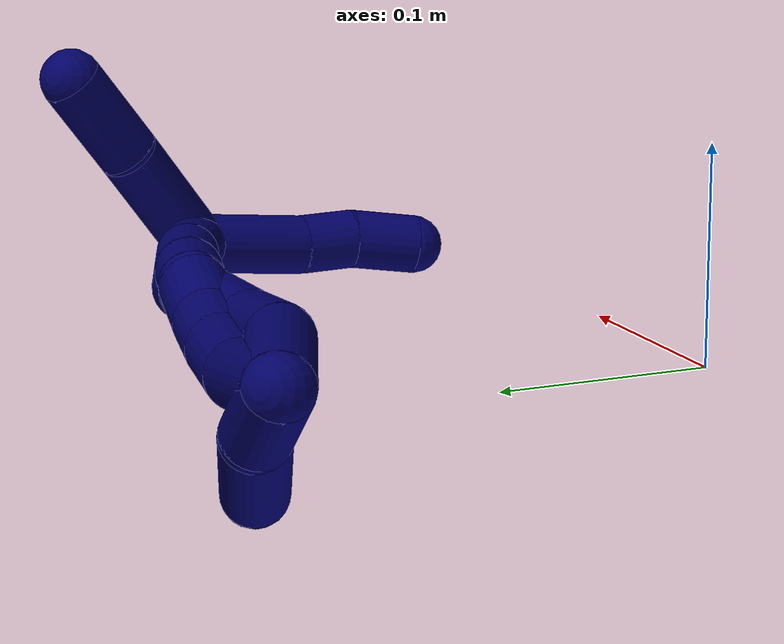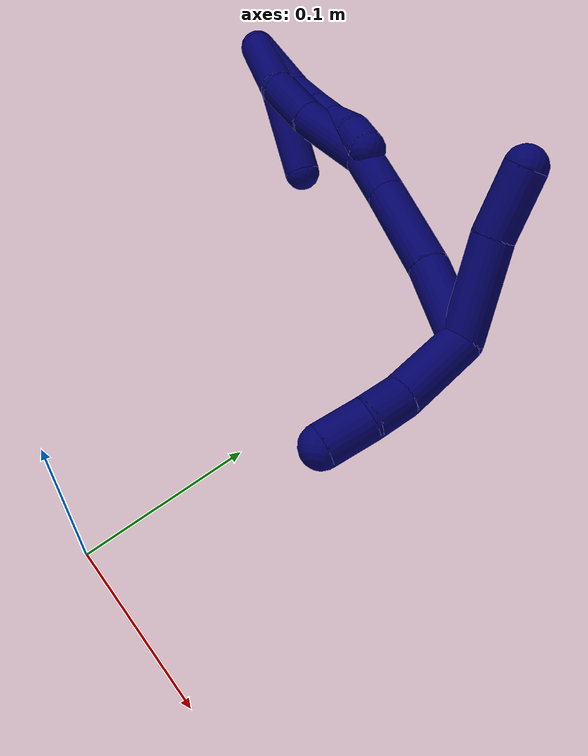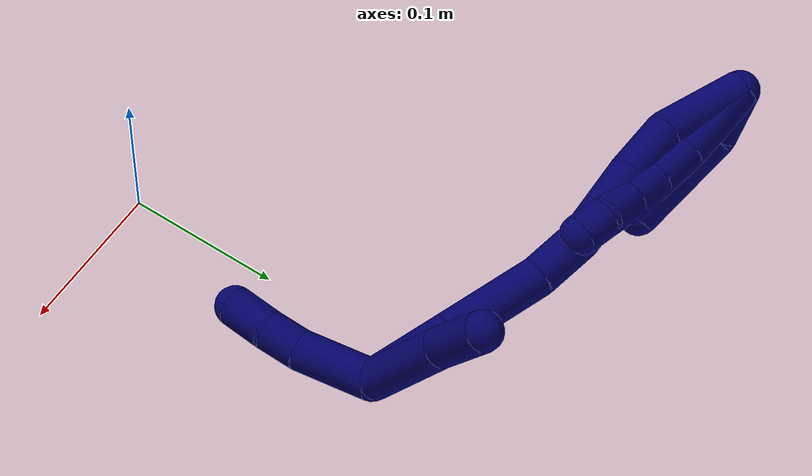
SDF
<sdf version="1.7">
 <world name="default">
  <model name="7">
   <static>0</static>
   <link name="7">
    <collision name="collision-cylinder-e_1_2_8">
     <pose>0.017801 -0.002719 -0.018951 2.99909 0.74905 2.78237</pose>
     <geometry><cylinder><radius>0.0125</radius><length>0.052284</length></cylinder></geometry>
     <surface>
      <friction><ode><mu>1.16</mu><mu2>1.16</mu2><slip1>0</slip1><slip2>0</slip2></ode></friction>
      <contact><ode><kp>1e+06</kp><kd>1</kd><max_vel>0</max_vel><min_depth>0.001</min_depth></ode></contact>
     </surface>
    </collision>
    <visual name="visual-cylinder-e_1_2_8">
     <pose>0.017801 -0.002719 -0.018951 2.99909 0.74905 2.78237</pose>
     <geometry><cylinder><radius>0.0125</radius><length>0.052284</length></cylinder></geometry>
     <material><ambient>0.003922 0 0.403922 1</ambient></material>
    </visual>
    <collision name="collision-cylinder-e_2_8_9">
     <pose>0.044977 -0.01034 -0.047865 2.68441 0.70111 2.00827</pose>
     <geometry><cylinder><radius>0.0125</radius><length>0.029065</length></cylinder></geometry>
     <surface>
      <friction><ode><mu>1.16</mu><mu2>1.16</mu2><slip1>0</slip1><slip2>0</slip2></ode></friction>
      <contact><ode><kp>1e+06</kp><kd>1</kd><max_vel>0</max_vel><min_depth>0.001</min_depth></ode></contact>
     </surface>
    </collision>
    <visual name="visual-cylinder-e_2_8_9">
     <pose>0.044977 -0.01034 -0.047865 2.68441 0.70111 2.00827</pose>
     <geometry><cylinder><radius>0.0125</radius><length>0.029065</length></cylinder></geometry>
     <material><ambient>0.003922 0 0.403922 1</ambient></material>
    </visual>
    <collision name="collision-cylinder-e_3_9_10">
     <pose>0.061654 -0.02018 -0.065931 2.5942 0.655962 1.76192</pose>
     <geometry><cylinder><radius>0.0125</radius><length>0.023946</length></cylinder></geometry>
     <surface>
      <friction><ode><mu>1.16</mu><mu2>1.16</mu2><slip1>0</slip1><slip2>0</slip2></ode></friction>
      <contact><ode><kp>1e+06</kp><kd>1</kd><max_vel>0</max_vel><min_depth>0.001</min_depth></ode></contact>
     </surface>
    </collision>
    <visual name="visual-cylinder-e_3_9_10">
     <pose>0.061654 -0.02018 -0.065931 2.5942 0.655962 1.76192</pose>
     <geometry><cylinder><radius>0.0125</radius><length>0.023946</length></cylinder></geometry>
     <material><ambient>0.003922 0 0.403922 1</ambient></material>
    </visual>
    <collision name="collision-cylinder-e_4_10_11">
     <pose>0.076129 -0.0319 -0.081408 2.39801 0.62134 1.3777</pose>
     <geometry><cylinder><radius>0.0125</radius><length>0.024644</length></cylinder></geometry>
     <surface>
      <friction><ode><mu>1.16</mu><mu2>1.16</mu2><slip1>0</slip1><slip2>0</slip2></ode></friction>
      <contact><ode><kp>1e+06</kp><kd>1</kd><max_vel>0</max_vel><min_depth>0.001</min_depth></ode></contact>
     </surface>
    </collision>
    <visual name="visual-cylinder-e_4_10_11">
     <pose>0.076129 -0.0319 -0.081408 2.39801 0.62134 1.3777</pose>
     <geometry><cylinder><radius>0.0125</radius><length>0.024644</length></cylinder></geometry>
     <material><ambient>0.003922 0 0.403922 1</ambient></material>
    </visual>
    <collision name="collision-cylinder-e_5_11_6">
     <pose>0.088809 -0.041673 -0.096614 2.7768 0.581134 2.03622</pose>
     <geometry><cylinder><radius>0.0125</radius><length>0.020062</length></cylinder></geometry>
     <surface>
      <friction><ode><mu>1.16</mu><mu2>1.16</mu2><slip1>0</slip1><slip2>0</slip2></ode></friction>
      <contact><ode><kp>1e+06</kp><kd>1</kd><max_vel>0</max_vel><min_depth>0.001</min_depth></ode></contact>
     </surface>
    </collision>
    <visual name="visual-cylinder-e_5_11_6">
     <pose>0.088809 -0.041673 -0.096614 2.7768 0.581134 2.03622</pose>
     <geometry><cylinder><radius>0.0125</radius><length>0.020062</length></cylinder></geometry>
     <material><ambient>0.003922 0 0.403922 1</ambient></material>
    </visual>
    <collision name="collision-cylinder-e_1_2_12">
     <pose>0.009921 0.007614 -0.010026 -2.49209 0.66739 -1.60002</pose>
     <geometry><cylinder><radius>0.0125</radius><length>0.032057</length></cylinder></geometry>
     <surface>
      <friction><ode><mu>1.16</mu><mu2>1.16</mu2><slip1>0</slip1><slip2>0</slip2></ode></friction>
      <contact><ode><kp>1e+06</kp><kd>1</kd><max_vel>0</max_vel><min_depth>0.001</min_depth></ode></contact>
     </surface>
    </collision>
    <visual name="visual-cylinder-e_1_2_12">
     <pose>0.009921 0.007614 -0.010026 -2.49209 0.66739 -1.60002</pose>
     <geometry><cylinder><radius>0.0125</radius><length>0.032057</length></cylinder></geometry>
     <material><ambient>0.003922 0 0.403922 1</ambient></material>
    </visual>
    <collision name="collision-cylinder-e_2_12_5">
     <pose>0.03605 0.025092 -0.048231 -2.80488 0.497395 -1.96199</pose>
     <geometry><cylinder><radius>0.0125</radius><length>0.067943</length></cylinder></geometry>
     <surface>
      <friction><ode><mu>1.16</mu><mu2>1.16</mu2><slip1>0</slip1><slip2>0</slip2></ode></friction>
      <contact><ode><kp>1e+06</kp><kd>1</kd><max_vel>0</max_vel><min_depth>0.001</min_depth></ode></contact>
     </surface>
    </collision>
    <visual name="visual-cylinder-e_2_12_5">
     <pose>0.03605 0.025092 -0.048231 -2.80488 0.497395 -1.96199</pose>
     <geometry><cylinder><radius>0.0125</radius><length>0.067943</length></cylinder></geometry>
     <material><ambient>0.003922 0 0.403922 1</ambient></material>
    </visual>
    <collision name="collision-cylinder-e_1_2_13">
     <pose>0.012604 -0.008478 -0.02369 2.79791 0.464382 1.87526</pose>
     <geometry><cylinder><radius>0.0125</radius><length>0.056282</length></cylinder></geometry>
     <surface>
      <friction><ode><mu>1.16</mu><mu2>1.16</mu2><slip1>0</slip1><slip2>0</slip2></ode></friction>
      <contact><ode><kp>1e+06</kp><kd>1</kd><max_vel>0</max_vel><min_depth>0.001</min_depth></ode></contact>
     </surface>
    </collision>
    <visual name="visual-cylinder-e_1_2_13">
     <pose>0.012604 -0.008478 -0.02369 2.79791 0.464382 1.87526</pose>
     <geometry><cylinder><radius>0.0125</radius><length>0.056282</length></cylinder></geometry>
     <material><ambient>0.003922 0 0.403922 1</ambient></material>
    </visual>
    <collision name="collision-cylinder-e_2_13_14">
     <pose>0.038151 -0.020006 -0.06015 2.90716 0.778269 2.58229</pose>
     <geometry><cylinder><radius>0.0125</radius><length>0.036875</length></cylinder></geometry>
     <surface>
      <friction><ode><mu>1.16</mu><mu2>1.16</mu2><slip1>0</slip1><slip2>0</slip2></ode></friction>
      <contact><ode><kp>1e+06</kp><kd>1</kd><max_vel>0</max_vel><min_depth>0.001</min_depth></ode></contact>
     </surface>
    </collision>
    <visual name="visual-cylinder-e_2_13_14">
     <pose>0.038151 -0.020006 -0.06015 2.90716 0.778269 2.58229</pose>
     <geometry><cylinder><radius>0.0125</radius><length>0.036875</length></cylinder></geometry>
     <material><ambient>0.003922 0 0.403922 1</ambient></material>
    </visual>
    <collision name="collision-cylinder-e_3_14_15">
     <pose>0.072249 -0.030043 -0.089174 2.73562 0.874282 2.31182</pose>
     <geometry><cylinder><radius>0.0125</radius><length>0.055153</length></cylinder></geometry>
     <surface>
      <friction><ode><mu>1.16</mu><mu2>1.16</mu2><slip1>0</slip1><slip2>0</slip2></ode></friction>
      <contact><ode><kp>1e+06</kp><kd>1</kd><max_vel>0</max_vel><min_depth>0.001</min_depth></ode></contact>
     </surface>
    </collision>
    <visual name="visual-cylinder-e_3_14_15">
     <pose>0.072249 -0.030043 -0.089174 2.73562 0.874282 2.31182</pose>
     <geometry><cylinder><radius>0.0125</radius><length>0.055153</length></cylinder></geometry>
     <material><ambient>0.003922 0 0.403922 1</ambient></material>
    </visual>
    <collision name="collision-cylinder-e_4_15_16">
     <pose>0.103259 -0.03869 -0.119221 3.02182 0.61705 2.76968</pose>
     <geometry><cylinder><radius>0.0125</radius><length>0.034067</length></cylinder></geometry>
     <surface>
      <friction><ode><mu>1.16</mu><mu2>1.16</mu2><slip1>0</slip1><slip2>0</slip2></ode></friction>
      <contact><ode><kp>1e+06</kp><kd>1</kd><max_vel>0</max_vel><min_depth>0.001</min_depth></ode></contact>
     </surface>
    </collision>
    <visual name="visual-cylinder-e_4_15_16">
     <pose>0.103259 -0.03869 -0.119221 3.02182 0.61705 2.76968</pose>
     <geometry><cylinder><radius>0.0125</radius><length>0.034067</length></cylinder></geometry>
     <material><ambient>0.003922 0 0.403922 1</ambient></material>
    </visual>
    <collision name="collision-cylinder-e_5_16_17">
     <pose>0.128885 -0.048475 -0.160425 2.85341 0.504062 2.11533</pose>
     <geometry><cylinder><radius>0.0125</radius><length>0.065304</length></cylinder></geometry>
     <surface>
      <friction><ode><mu>1.16</mu><mu2>1.16</mu2><slip1>0</slip1><slip2>0</slip2></ode></friction>
      <contact><ode><kp>1e+06</kp><kd>1</kd><max_vel>0</max_vel><min_depth>0.001</min_depth></ode></contact>
     </surface>
    </collision>
    <visual name="visual-cylinder-e_5_16_17">
     <pose>0.128885 -0.048475 -0.160425 2.85341 0.504062 2.11533</pose>
     <geometry><cylinder><radius>0.0125</radius><length>0.065304</length></cylinder></geometry>
     <material><ambient>0.003922 0 0.403922 1</ambient></material>
    </visual>
    <collision name="collision-cylinder-e_6_17_1">
     <pose>0.156264 -0.060375 -0.210974 2.97989 0.459808 2.47502</pose>
     <geometry><cylinder><radius>0.0125</radius><length>0.052319</length></cylinder></geometry>
     <surface>
      <friction><ode><mu>1.16</mu><mu2>1.16</mu2><slip1>0</slip1><slip2>0</slip2></ode></friction>
      <contact><ode><kp>1e+06</kp><kd>1</kd><max_vel>0</max_vel><min_depth>0.001</min_depth></ode></contact>
     </surface>
    </collision>
    <visual name="visual-cylinder-e_6_17_1">
     <pose>0.156264 -0.060375 -0.210974 2.97989 0.459808 2.47502</pose>
     <geometry><cylinder><radius>0.0125</radius><length>0.052319</length></cylinder></geometry>
     <material><ambient>0.003922 0 0.403922 1</ambient></material>
    </visual>
    <collision name="collision-cylinder-e_1_1_18">
     <pose>0.154101 -0.064271 -0.25415 3.13553 -0.602111 -3.12205</pose>
     <geometry><cylinder><radius>0.0125</radius><length>0.048633</length></cylinder></geometry>
     <surface>
      <friction><ode><mu>1.16</mu><mu2>1.16</mu2><slip1>0</slip1><slip2>0</slip2></ode></friction>
      <contact><ode><kp>1e+06</kp><kd>1</kd><max_vel>0</max_vel><min_depth>0.001</min_depth></ode></contact>
     </surface>
    </collision>
    <visual name="visual-cylinder-e_1_1_18">
     <pose>0.154101 -0.064271 -0.25415 3.13553 -0.602111 -3.12205</pose>
     <geometry><cylinder><radius>0.0125</radius><length>0.048633</length></cylinder></geometry>
     <material><ambient>0.003922 0 0.403922 1</ambient></material>
    </visual>
    <collision name="collision-cylinder-e_2_18_19">
     <pose>0.132598 -0.065749 -0.28281 2.98549 -0.724962 -2.73484</pose>
     <geometry><cylinder><radius>0.0125</radius><length>0.023315</length></cylinder></geometry>
     <surface>
      <friction><ode><mu>1.16</mu><mu2>1.16</mu2><slip1>0</slip1><slip2>0</slip2></ode></friction>
      <contact><ode><kp>1e+06</kp><kd>1</kd><max_vel>0</max_vel><min_depth>0.001</min_depth></ode></contact>
     </surface>
    </collision>
    <visual name="visual-cylinder-e_2_18_19">
     <pose>0.132598 -0.065749 -0.28281 2.98549 -0.724962 -2.73484</pose>
     <geometry><cylinder><radius>0.0125</radius><length>0.023315</length></cylinder></geometry>
     <material><ambient>0.003922 0 0.403922 1</ambient></material>
    </visual>
    <collision name="collision-cylinder-e_3_19_4">
     <pose>0.114646 -0.065929 -0.300962 -3.01877 -0.816571 2.85921</pose>
     <geometry><cylinder><radius>0.0125</radius><length>0.028052</length></cylinder></geometry>
     <surface>
      <friction><ode><mu>1.16</mu><mu2>1.16</mu2><slip1>0</slip1><slip2>0</slip2></ode></friction>
      <contact><ode><kp>1e+06</kp><kd>1</kd><max_vel>0</max_vel><min_depth>0.001</min_depth></ode></contact>
     </surface>
    </collision>
    <visual name="visual-cylinder-e_3_19_4">
     <pose>0.114646 -0.065929 -0.300962 -3.01877 -0.816571 2.85921</pose>
     <geometry><cylinder><radius>0.0125</radius><length>0.028052</length></cylinder></geometry>
     <material><ambient>0.003922 0 0.403922 1</ambient></material>
    </visual>
    <collision name="collision-cylinder-e_1_1_20">
     <pose>0.169427 -0.081405 -0.210241 0.625937 0.052692 0.017055</pose>
     <geometry><cylinder><radius>0.0125</radius><length>0.05899</length></cylinder></geometry>
     <surface>
      <friction><ode><mu>1.16</mu><mu2>1.16</mu2><slip1>0</slip1><slip2>0</slip2></ode></friction>
      <contact><ode><kp>1e+06</kp><kd>1</kd><max_vel>0</max_vel><min_depth>0.001</min_depth></ode></contact>
     </surface>
    </collision>
    <visual name="visual-cylinder-e_1_1_20">
     <pose>0.169427 -0.081405 -0.210241 0.625937 0.052692 0.017055</pose>
     <geometry><cylinder><radius>0.0125</radius><length>0.05899</length></cylinder></geometry>
     <material><ambient>0.003922 0 0.403922 1</ambient></material>
    </visual>
    <collision name="collision-cylinder-e_2_20_3">
     <pose>0.174657 -0.11226 -0.171471 0.739777 0.180287 0.070065</pose>
     <geometry><cylinder><radius>0.0125</radius><length>0.04101</length></cylinder></geometry>
     <surface>
      <friction><ode><mu>1.16</mu><mu2>1.16</mu2><slip1>0</slip1><slip2>0</slip2></ode></friction>
      <contact><ode><kp>1e+06</kp><kd>1</kd><max_vel>0</max_vel><min_depth>0.001</min_depth></ode></contact>
     </surface>
    </collision>
    <visual name="visual-cylinder-e_2_20_3">
     <pose>0.174657 -0.11226 -0.171471 0.739777 0.180287 0.070065</pose>
     <geometry><cylinder><radius>0.0125</radius><length>0.04101</length></cylinder></geometry>
     <material><ambient>0.003922 0 0.403922 1</ambient></material>
    </visual>
    <collision name="collision-sphere-3">
     <pose>0.178334 -0.125859 -0.156571 0 -0 0</pose>
     <geometry><sphere><radius>0.0125</radius></sphere></geometry>
     <surface>
      <friction><ode><mu>1.16</mu><mu2>1.16</mu2><slip1>0</slip1><slip2>0</slip2></ode></friction>
      <contact><ode><kp>1e+06</kp><kd>1</kd><max_vel>0</max_vel><min_depth>0.001</min_depth></ode></contact>
     </surface>
    </collision>
    <visual name="visual-sphere-3">
     <pose>0.178334 -0.125859 -0.156571 0 -0 0</pose>
     <geometry><sphere><radius>0.0125</radius></sphere></geometry>
     <material><ambient>0.003922 0 0.403922 1</ambient></material>
    </visual>
    <collision name="collision-sphere-20">
     <pose>0.17098 -0.098661 -0.186371 0 -0 0</pose>
     <geometry><sphere><radius>0.0125</radius></sphere></geometry>
     <surface>
      <friction><ode><mu>1.16</mu><mu2>1.16</mu2><slip1>0</slip1><slip2>0</slip2></ode></friction>
      <contact><ode><kp>1e+06</kp><kd>1</kd><max_vel>0</max_vel><min_depth>0.001</min_depth></ode></contact>
     </surface>
    </collision>
    <visual name="visual-sphere-20">
     <pose>0.17098 -0.098661 -0.186371 0 -0 0</pose>
     <geometry><sphere><radius>0.0125</radius></sphere></geometry>
     <material><ambient>0.003922 0 0.403922 1</ambient></material>
    </visual>
    <collision name="collision-sphere-4">
     <pose>0.104424 -0.064753 -0.310493 0 -0 0</pose>
     <geometry><sphere><radius>0.0125</radius></sphere></geometry>
     <surface>
      <friction><ode><mu>1.16</mu><mu2>1.16</mu2><slip1>0</slip1><slip2>0</slip2></ode></friction>
      <contact><ode><kp>1e+06</kp><kd>1</kd><max_vel>0</max_vel><min_depth>0.001</min_depth></ode></contact>
     </surface>
    </collision>
    <visual name="visual-sphere-4">
     <pose>0.104424 -0.064753 -0.310493 0 -0 0</pose>
     <geometry><sphere><radius>0.0125</radius></sphere></geometry>
     <material><ambient>0.003922 0 0.403922 1</ambient></material>
    </visual>
    <collision name="collision-sphere-6">
     <pose>0.094315 -0.044664 -0.104447 0 -0 0</pose>
     <geometry><sphere><radius>0.0125</radius></sphere></geometry>
     <surface>
      <friction><ode><mu>1.16</mu><mu2>1.16</mu2><slip1>0</slip1><slip2>0</slip2></ode></friction>
      <contact><ode><kp>1e+06</kp><kd>1</kd><max_vel>0</max_vel><min_depth>0.001</min_depth></ode></contact>
     </surface>
    </collision>
    <visual name="visual-sphere-6">
     <pose>0.094315 -0.044664 -0.104447 0 -0 0</pose>
     <geometry><sphere><radius>0.0125</radius></sphere></geometry>
     <material><ambient>0.003922 0 0.403922 1</ambient></material>
    </visual>
    <collision name="collision-sphere-11">
     <pose>0.083302 -0.038682 -0.088782 0 -0 0</pose>
     <geometry><sphere><radius>0.0125</radius></sphere></geometry>
     <surface>
      <friction><ode><mu>1.16</mu><mu2>1.16</mu2><slip1>0</slip1><slip2>0</slip2></ode></friction>
      <contact><ode><kp>1e+06</kp><kd>1</kd><max_vel>0</max_vel><min_depth>0.001</min_depth></ode></contact>
     </surface>
    </collision>
    <visual name="visual-sphere-11">
     <pose>0.083302 -0.038682 -0.088782 0 -0 0</pose>
     <geometry><sphere><radius>0.0125</radius></sphere></geometry>
     <material><ambient>0.003922 0 0.403922 1</ambient></material>
    </visual>
    <collision name="collision-sphere-10">
     <pose>0.068956 -0.025118 -0.074033 0 -0 0</pose>
     <geometry><sphere><radius>0.0125</radius></sphere></geometry>
     <surface>
      <friction><ode><mu>1.16</mu><mu2>1.16</mu2><slip1>0</slip1><slip2>0</slip2></ode></friction>
      <contact><ode><kp>1e+06</kp><kd>1</kd><max_vel>0</max_vel><min_depth>0.001</min_depth></ode></contact>
     </surface>
    </collision>
    <visual name="visual-sphere-10">
     <pose>0.068956 -0.025118 -0.074033 0 -0 0</pose>
     <geometry><sphere><radius>0.0125</radius></sphere></geometry>
     <material><ambient>0.003922 0 0.403922 1</ambient></material>
    </visual>
    <collision name="collision-sphere-9">
     <pose>0.054351 -0.015241 -0.05783 0 -0 0</pose>
     <geometry><sphere><radius>0.0125</radius></sphere></geometry>
     <surface>
      <friction><ode><mu>1.16</mu><mu2>1.16</mu2><slip1>0</slip1><slip2>0</slip2></ode></friction>
      <contact><ode><kp>1e+06</kp><kd>1</kd><max_vel>0</max_vel><min_depth>0.001</min_depth></ode></contact>
     </surface>
    </collision>
    <visual name="visual-sphere-9">
     <pose>0.054351 -0.015241 -0.05783 0 -0 0</pose>
     <geometry><sphere><radius>0.0125</radius></sphere></geometry>
     <material><ambient>0.003922 0 0.403922 1</ambient></material>
    </visual>
    <collision name="collision-sphere-2">
     <geometry><sphere><radius>0.0125</radius></sphere></geometry>
     <surface>
      <friction><ode><mu>1.16</mu><mu2>1.16</mu2><slip1>0</slip1><slip2>0</slip2></ode></friction>
      <contact><ode><kp>1e+06</kp><kd>1</kd><max_vel>0</max_vel><min_depth>0.001</min_depth></ode></contact>
     </surface>
    </collision>
    <visual name="visual-sphere-2">
     <geometry><sphere><radius>0.0125</radius></sphere></geometry>
     <material><ambient>0.003922 0 0.403922 1</ambient></material>
    </visual>
    <collision name="collision-sphere-19">
     <pose>0.124868 -0.067106 -0.29143 0 -0 0</pose>
     <geometry><sphere><radius>0.0125</radius></sphere></geometry>
     <surface>
      <friction><ode><mu>1.16</mu><mu2>1.16</mu2><slip1>0</slip1><slip2>0</slip2></ode></friction>
      <contact><ode><kp>1e+06</kp><kd>1</kd><max_vel>0</max_vel><min_depth>0.001</min_depth></ode></contact>
     </surface>
    </collision>
    <visual name="visual-sphere-19">
     <pose>0.124868 -0.067106 -0.29143 0 -0 0</pose>
     <geometry><sphere><radius>0.0125</radius></sphere></geometry>
     <material><ambient>0.003922 0 0.403922 1</ambient></material>
    </visual>
    <collision name="collision-sphere-8">
     <pose>0.035602 -0.005438 -0.037901 0 -0 0</pose>
     <geometry><sphere><radius>0.0125</radius></sphere></geometry>
     <surface>
      <friction><ode><mu>1.16</mu><mu2>1.16</mu2><slip1>0</slip1><slip2>0</slip2></ode></friction>
      <contact><ode><kp>1e+06</kp><kd>1</kd><max_vel>0</max_vel><min_depth>0.001</min_depth></ode></contact>
     </surface>
    </collision>
    <visual name="visual-sphere-8">
     <pose>0.035602 -0.005438 -0.037901 0 -0 0</pose>
     <geometry><sphere><radius>0.0125</radius></sphere></geometry>
     <material><ambient>0.003922 0 0.403922 1</ambient></material>
    </visual>
    <collision name="collision-sphere-12">
     <pose>0.019841 0.015228 -0.020052 0 -0 0</pose>
     <geometry><sphere><radius>0.0125</radius></sphere></geometry>
     <surface>
      <friction><ode><mu>1.16</mu><mu2>1.16</mu2><slip1>0</slip1><slip2>0</slip2></ode></friction>
      <contact><ode><kp>1e+06</kp><kd>1</kd><max_vel>0</max_vel><min_depth>0.001</min_depth></ode></contact>
     </surface>
    </collision>
    <visual name="visual-sphere-12">
     <pose>0.019841 0.015228 -0.020052 0 -0 0</pose>
     <geometry><sphere><radius>0.0125</radius></sphere></geometry>
     <material><ambient>0.003922 0 0.403922 1</ambient></material>
    </visual>
    <collision name="collision-sphere-5">
     <pose>0.052259 0.034955 -0.076409 0 -0 0</pose>
     <geometry><sphere><radius>0.0125</radius></sphere></geometry>
     <surface>
      <friction><ode><mu>1.16</mu><mu2>1.16</mu2><slip1>0</slip1><slip2>0</slip2></ode></friction>
      <contact><ode><kp>1e+06</kp><kd>1</kd><max_vel>0</max_vel><min_depth>0.001</min_depth></ode></contact>
     </surface>
    </collision>
    <visual name="visual-sphere-5">
     <pose>0.052259 0.034955 -0.076409 0 -0 0</pose>
     <geometry><sphere><radius>0.0125</radius></sphere></geometry>
     <material><ambient>0.003922 0 0.403922 1</ambient></material>
    </visual>
    <collision name="collision-sphere-13">
     <pose>0.025207 -0.016956 -0.047379 0 -0 0</pose>
     <geometry><sphere><radius>0.0125</radius></sphere></geometry>
     <surface>
      <friction><ode><mu>1.16</mu><mu2>1.16</mu2><slip1>0</slip1><slip2>0</slip2></ode></friction>
      <contact><ode><kp>1e+06</kp><kd>1</kd><max_vel>0</max_vel><min_depth>0.001</min_depth></ode></contact>
     </surface>
    </collision>
    <visual name="visual-sphere-13">
     <pose>0.025207 -0.016956 -0.047379 0 -0 0</pose>
     <geometry><sphere><radius>0.0125</radius></sphere></geometry>
     <material><ambient>0.003922 0 0.403922 1</ambient></material>
    </visual>
    <collision name="collision-sphere-14">
     <pose>0.051095 -0.023056 -0.072921 0 -0 0</pose>
     <geometry><sphere><radius>0.0125</radius></sphere></geometry>
     <surface>
      <friction><ode><mu>1.16</mu><mu2>1.16</mu2><slip1>0</slip1><slip2>0</slip2></ode></friction>
      <contact><ode><kp>1e+06</kp><kd>1</kd><max_vel>0</max_vel><min_depth>0.001</min_depth></ode></contact>
     </surface>
    </collision>
    <visual name="visual-sphere-14">
     <pose>0.051095 -0.023056 -0.072921 0 -0 0</pose>
     <geometry><sphere><radius>0.0125</radius></sphere></geometry>
     <material><ambient>0.003922 0 0.403922 1</ambient></material>
    </visual>
    <collision name="collision-sphere-15">
     <pose>0.093403 -0.03703 -0.105428 0 -0 0</pose>
     <geometry><sphere><radius>0.0125</radius></sphere></geometry>
     <surface>
      <friction><ode><mu>1.16</mu><mu2>1.16</mu2><slip1>0</slip1><slip2>0</slip2></ode></friction>
      <contact><ode><kp>1e+06</kp><kd>1</kd><max_vel>0</max_vel><min_depth>0.001</min_depth></ode></contact>
     </surface>
    </collision>
    <visual name="visual-sphere-15">
     <pose>0.093403 -0.03703 -0.105428 0 -0 0</pose>
     <geometry><sphere><radius>0.0125</radius></sphere></geometry>
     <material><ambient>0.003922 0 0.403922 1</ambient></material>
    </visual>
    <collision name="collision-sphere-16">
     <pose>0.113115 -0.040349 -0.133014 0 -0 0</pose>
     <geometry><sphere><radius>0.0125</radius></sphere></geometry>
     <surface>
      <friction><ode><mu>1.16</mu><mu2>1.16</mu2><slip1>0</slip1><slip2>0</slip2></ode></friction>
      <contact><ode><kp>1e+06</kp><kd>1</kd><max_vel>0</max_vel><min_depth>0.001</min_depth></ode></contact>
     </surface>
    </collision>
    <visual name="visual-sphere-16">
     <pose>0.113115 -0.040349 -0.133014 0 -0 0</pose>
     <geometry><sphere><radius>0.0125</radius></sphere></geometry>
     <material><ambient>0.003922 0 0.403922 1</ambient></material>
    </visual>
    <collision name="collision-sphere-17">
     <pose>0.144655 -0.056601 -0.187837 0 -0 0</pose>
     <geometry><sphere><radius>0.0125</radius></sphere></geometry>
     <surface>
      <friction><ode><mu>1.16</mu><mu2>1.16</mu2><slip1>0</slip1><slip2>0</slip2></ode></friction>
      <contact><ode><kp>1e+06</kp><kd>1</kd><max_vel>0</max_vel><min_depth>0.001</min_depth></ode></contact>
     </surface>
    </collision>
    <visual name="visual-sphere-17">
     <pose>0.144655 -0.056601 -0.187837 0 -0 0</pose>
     <geometry><sphere><radius>0.0125</radius></sphere></geometry>
     <material><ambient>0.003922 0 0.403922 1</ambient></material>
    </visual>
    <collision name="collision-sphere-1">
     <pose>0.167873 -0.06415 -0.23411 0 -0 0</pose>
     <geometry><sphere><radius>0.0125</radius></sphere></geometry>
     <surface>
      <friction><ode><mu>1.16</mu><mu2>1.16</mu2><slip1>0</slip1><slip2>0</slip2></ode></friction>
      <contact><ode><kp>1e+06</kp><kd>1</kd><max_vel>0</max_vel><min_depth>0.001</min_depth></ode></contact>
     </surface>
    </collision>
    <visual name="visual-sphere-1">
     <pose>0.167873 -0.06415 -0.23411 0 -0 0</pose>
     <geometry><sphere><radius>0.0125</radius></sphere></geometry>
     <material><ambient>0.003922 0 0.403922 1</ambient></material>
    </visual>
    <collision name="collision-sphere-18">
     <pose>0.140328 -0.064393 -0.27419 0 -0 0</pose>
     <geometry><sphere><radius>0.0125</radius></sphere></geometry>
     <surface>
      <friction><ode><mu>1.16</mu><mu2>1.16</mu2><slip1>0</slip1><slip2>0</slip2></ode></friction>
      <contact><ode><kp>1e+06</kp><kd>1</kd><max_vel>0</max_vel><min_depth>0.001</min_depth></ode></contact>
     </surface>
    </collision>
    <visual name="visual-sphere-18">
     <pose>0.140328 -0.064393 -0.27419 0 -0 0</pose>
     <geometry><sphere><radius>0.0125</radius></sphere></geometry>
     <material><ambient>0.003922 0 0.403922 1</ambient></material>
    </visual>
    <inertial>
     <pose>0.089746 -0.036037 -0.123172 0 -0 0</pose>
     <mass>0.75</mass>
     <inertia>
      <ixx>1.1e-05</ixx>
      <ixy>0</ixy>
      <ixz>0</ixz>
      <iyy>0.000156</iyy>
      <iyz>0</iyz>
      <izz>-7.1e-05</izz>
     </inertia>
    </inertial>
   </link>
   <pose>-0.230724 0.288003 0.083234 -1.32197 0.143764 0.719226</pose>
  </model>
 </world>
</sdf>
